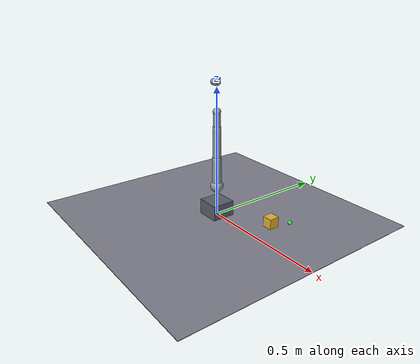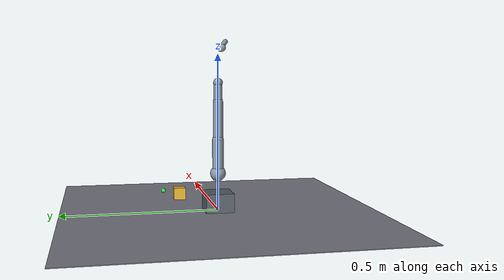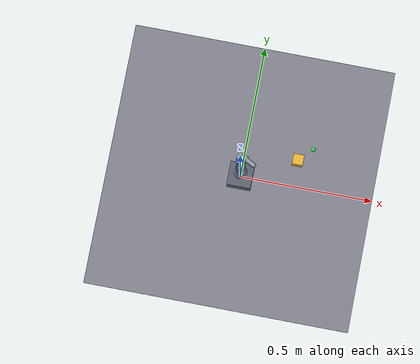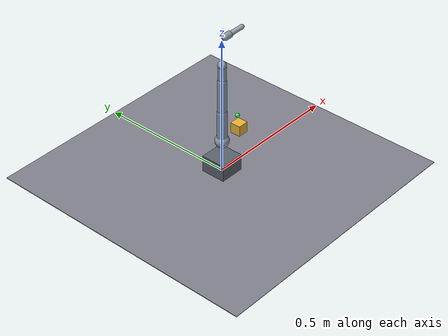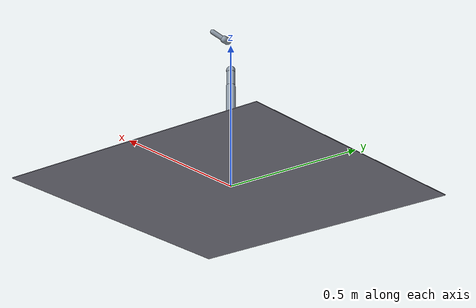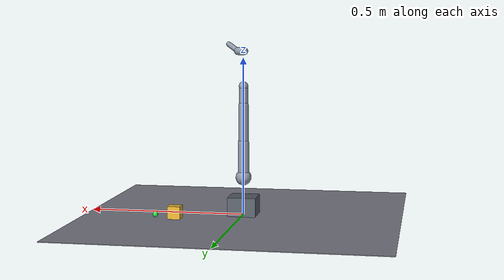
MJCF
<mujoco model="arm5dof_push">
  <compiler angle="radian" autolimits="true" coordinate="local" eulerseq="xyz"/>

  <option gravity="0 0 -9.81" integrator="implicitfast" timestep="0.005"/>

  <default>
    <joint type="hinge" damping="0.1" armature="0.01" limited="true"/>
    <geom type="capsule" rgba="0.55 0.6 0.65 1" contype="0" conaffinity="0"/>
    <motor ctrllimited="true" ctrlrange="-1.5 1.5" forcerange="-1 1"/>
  </default>

  <worldbody>
    <!-- Table plane: block slides on this. -->
    <body name="table" pos="0 0 0">
      <geom name="table_geom" type="box" size="0.5 0.5 0.001" pos="0 0 -0.001"
            rgba="0.5 0.5 0.55 1" contype="1" conaffinity="1"
            friction="0.4 0.05 0.05"/>
    </body>

    <!-- Pushable block: slides in the table plane (x, y). -->
    <body name="block" pos="0.20 0.10 0.02">
      <joint name="block_x" type="slide" axis="1 0 0" range="-0.5 0.5" limited="true" damping="0.5"/>
      <joint name="block_y" type="slide" axis="0 1 0" range="-0.5 0.5" limited="true" damping="0.5"/>
      <geom name="block_geom" type="box" size="0.02 0.02 0.02" mass="0.06"
            rgba="0.9 0.7 0.2 1" contype="1" conaffinity="1"
            friction="0.4 0.05 0.05"/>
    </body>

    <!-- Fixed base -->
    <body name="base" pos="0 0 0">
      <geom name="base_geom" type="box" size="0.045 0.045 0.03" pos="0 0 0.03"
            rgba="0.35 0.38 0.42 1"/>
      <body name="shoulder" pos="0 0 0.120">
        <joint name="j1" axis="0 0 1" range="-1.4835 1.4835"/>
        <geom name="shoulder_geom" type="sphere" size="0.025" pos="0 0 0"/>
        <body name="shoulder_link" pos="0 0 0">
          <body name="upper_arm" pos="0 0 0">
            <joint name="j2" axis="0 1 0" range="-1.4835 1.4835"/>
            <geom name="upper_geom" type="capsule" fromto="0 0 0 0 0 0.110" size="0.018"/>
            <body name="elbow" pos="0 0 0.110">
              <joint name="j3" axis="0 1 0" range="-1.6057 1.6057"/>
              <geom name="forearm_geom" type="capsule" fromto="0 0 0 0 0 0.120" size="0.016"/>
              <body name="wrist_pitch" pos="0 0 0.120">
                <joint name="j4" axis="0 1 0" range="-1.6406 1.6057"/>
                <geom name="wrist_pitch_geom" type="capsule" fromto="0 0 0 0 0 0.060" size="0.014"/>
                <body name="wrist_roll" pos="0 0 0.060">
                  <joint name="j5" axis="0 0 1" range="-1.5708 1.5708"/>
                  <geom name="wrist_roll_geom" type="sphere" size="0.015"/>
                  <body name="tool" pos="0 -0.0132 0.110">
                    <geom name="tool_geom" type="capsule" fromto="0 0 0 0.02 0 0" size="0.012"
                          contype="1" conaffinity="1" friction="0.1 0.02 0.02"/>
                    <geom name="pusher_geom" type="capsule"
                          fromto="0.0200 0 0 0.0537 -0.0210 0.0210" size="0.008"
                          contype="1" conaffinity="1" friction="0.1 0.02 0.02"/>
                    <site name="ee" pos="0.02 0 0" size="0.008" rgba="1 0.2 0.2 1"/>
                  </body>
                </body>
              </body>
            </body>
          </body>
        </body>
      </body>
    </body>

    <!-- Task frame: the push target in world space -->
    <body name="goal" pos="0.25 0.15 0.02">
      <geom name="goal_geom" type="sphere" size="0.008" rgba="0.2 0.9 0.3 1" contype="0" conaffinity="0"/>
    </body>

    <camera name="overview" pos="0.6 -0.8 0.7" xyaxes="1 0 0 0 1 0"/>
  </worldbody>

  <actuator>
    <motor name="m1" joint="j1"/>
    <motor name="m2" joint="j2"/>
    <motor name="m3" joint="j3"/>
    <motor name="m4" joint="j4"/>
    <motor name="m5" joint="j5"/>
  </actuator>

  <sensor>
    <jointpos name="qpos" joint="j1"/>
    <jointpos name="qpos2" joint="j2"/>
    <jointpos name="qpos3" joint="j3"/>
    <jointpos name="qpos4" joint="j4"/>
    <jointpos name="qpos5" joint="j5"/>
    <framepos name="block_pos" objtype="body" objname="block"/>
  </sensor>
</mujoco>
